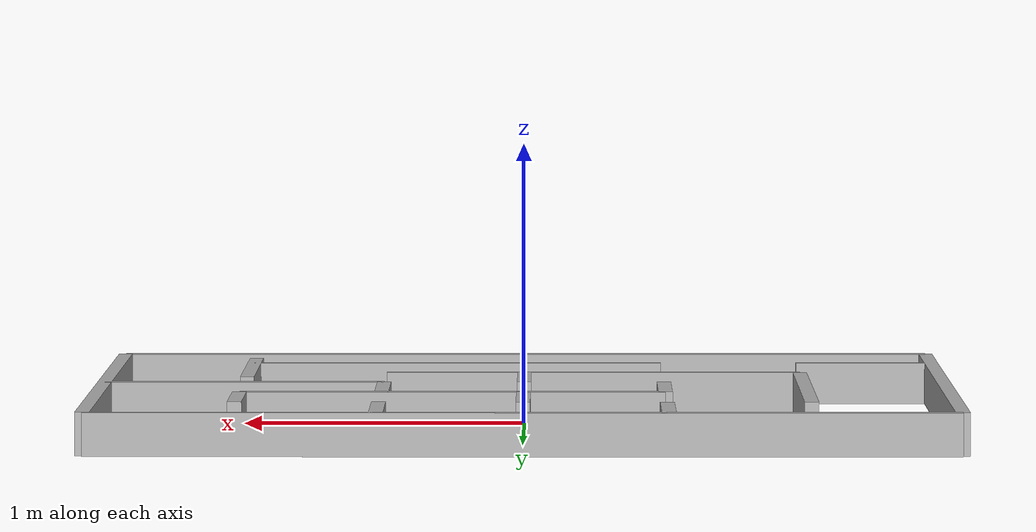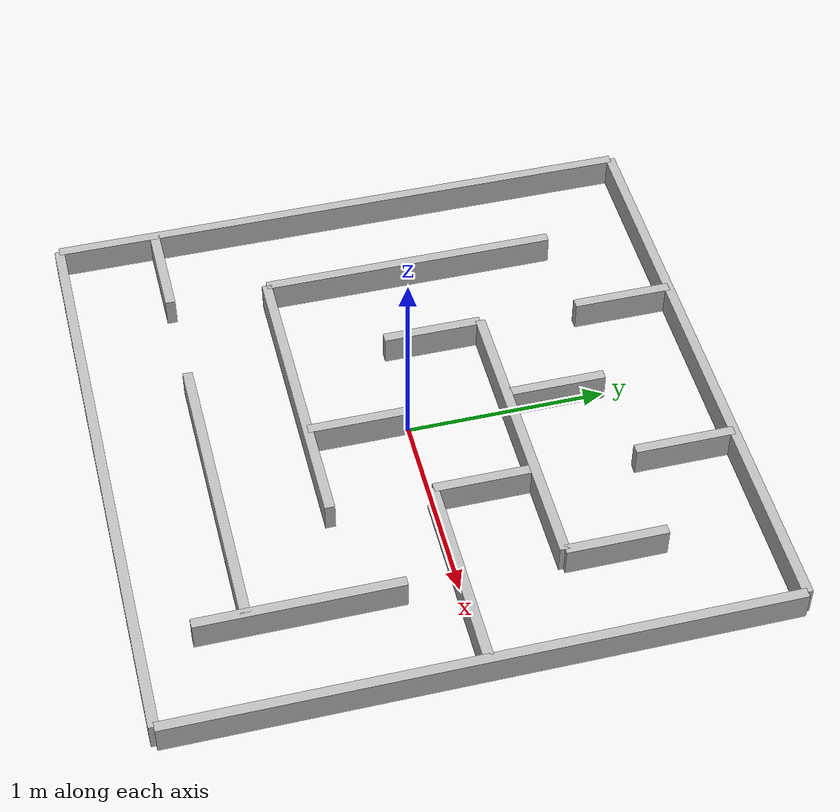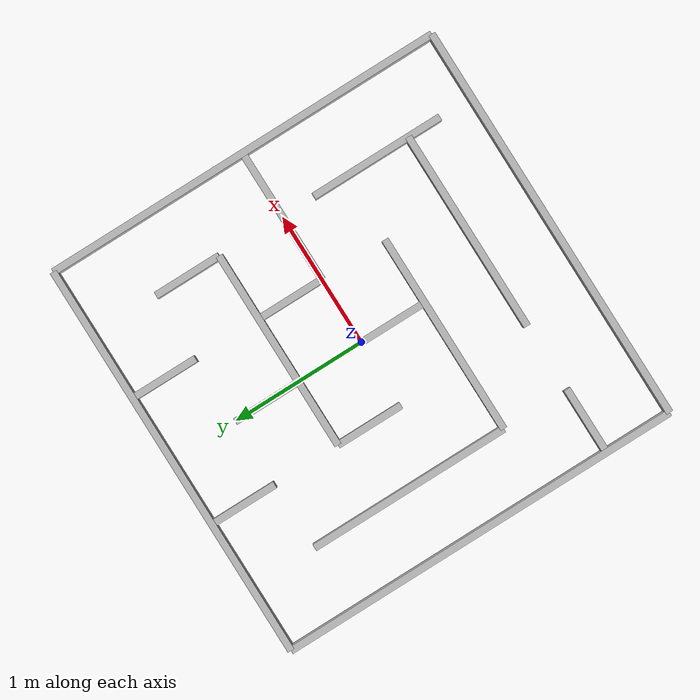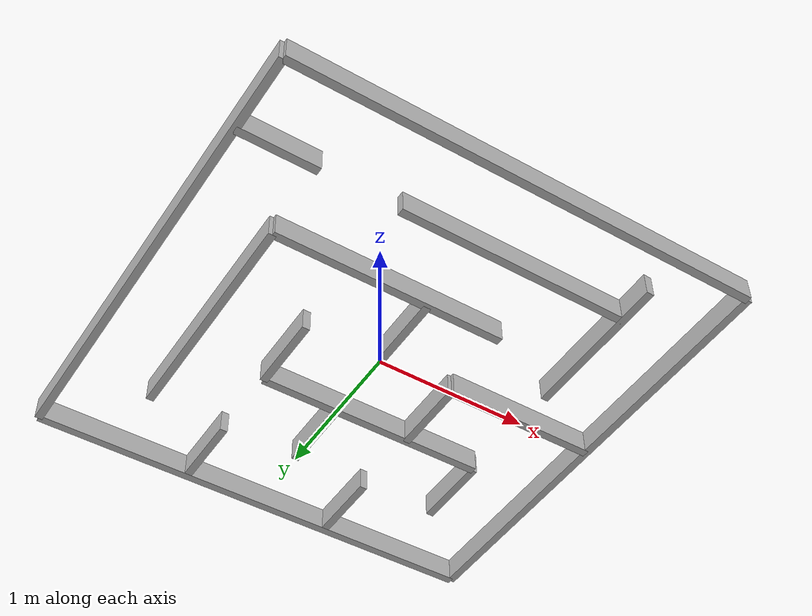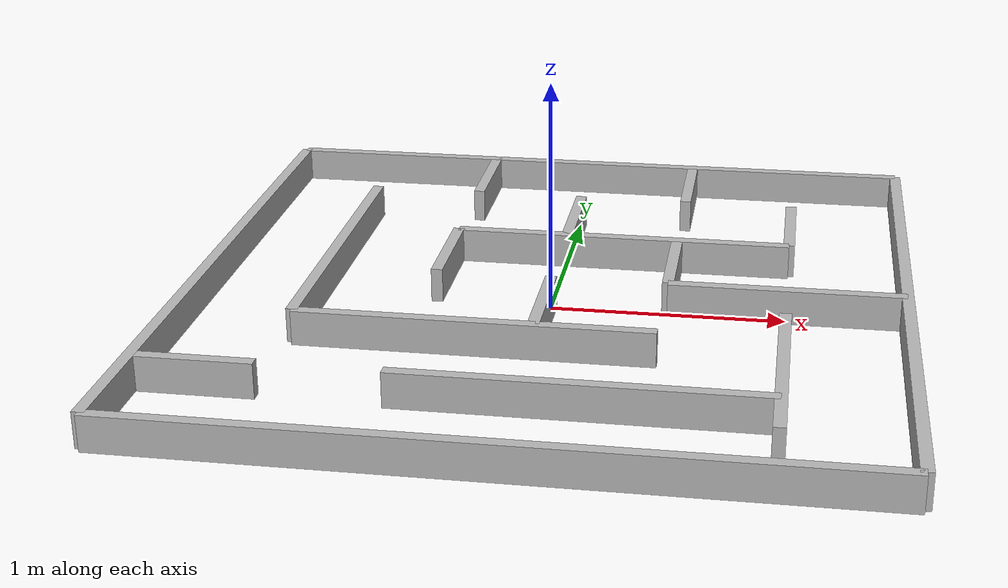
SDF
# sdf final code

<?xml version="1.0"?>
<sdf version="1.6">
  <model name="maze">
    <!-- Maze walls: 6x6 grid (0.5m cell size); wall thickness=0.05m; wall height=0.15m. Model is centered at origin (X=0,Y=0), with wall bases on the floor (Z=0). -->
    <static>true</static>
    <link name="maze_walls">
      <!-- Outer horizontal walls -->
      <collision name="wall_collision_h_outer_top">
        <geometry>
          <box>
            <size>3.0 0.05 0.15</size>
          </box>
        </geometry>
        <pose>0.0 1.5 0.075 0 0 0</pose>
      </collision>
      <visual name="wall_visual_h_outer_top">
        <geometry>
          <box>
            <size>3.0 0.05 0.15</size>
          </box>
        </geometry>
        <pose>0.0 1.5 0.075 0 0 0</pose>
      </visual>
      <collision name="wall_collision_h_outer_bottom">
        <geometry>
          <box>
            <size>3.0 0.05 0.15</size>
          </box>
        </geometry>
        <pose>0.0 -1.5 0.075 0 0 0</pose>
      </collision>
      <visual name="wall_visual_h_outer_bottom">
        <geometry>
          <box>
            <size>3.0 0.05 0.15</size>
          </box>
        </geometry>
        <pose>0.0 -1.5 0.075 0 0 0</pose>
      </visual>

      <!-- Outer vertical walls -->
      <collision name="wall_collision_v_outer_left">
        <geometry>
          <box>
            <size>0.05 3.0 0.15</size>
          </box>
        </geometry>
        <pose>-1.5 0.0 0.075 0 0 0</pose>
      </collision>
      <visual name="wall_visual_v_outer_left">
        <geometry>
          <box>
            <size>0.05 3.0 0.15</size>
          </box>
        </geometry>
        <pose>-1.5 0.0 0.075 0 0 0</pose>
      </visual>
      <collision name="wall_collision_v_outer_right">
        <geometry>
          <box>
            <size>0.05 3.0 0.15</size>
          </box>
        </geometry>
        <pose>1.5 0.0 0.075 0 0 0</pose>
      </collision>
      <visual name="wall_visual_v_outer_right">
        <geometry>
          <box>
            <size>0.05 3.0 0.15</size>
          </box>
        </geometry>
        <pose>1.5 0.0 0.075 0 0 0</pose>
      </visual>

      <!-- Internal horizontal walls -->
      <collision name="wall_collision_h_-1.00_-1.25">
        <geometry>
          <box>
            <size>0.5 0.05 0.15</size>
          </box>
        </geometry>
        <pose>-1.25 -1.0 0.075 0 0 0</pose>
      </collision>
      <visual name="wall_visual_h_-1.00_-1.25">
        <geometry>
          <box>
            <size>0.5 0.05 0.15</size>
          </box>
        </geometry>
        <pose>-1.25 -1.0 0.075 0 0 0</pose>
      </visual>
      <collision name="wall_collision_h_-1.00_0.25">
        <geometry>
          <box>
            <size>1.5 0.05 0.15</size>
          </box>
        </geometry>
        <pose>0.25 -1.0 0.075 0 0 0</pose>
      </collision>
      <visual name="wall_visual_h_-1.00_0.25">
        <geometry>
          <box>
            <size>1.5 0.05 0.15</size>
          </box>
        </geometry>
        <pose>0.25 -1.0 0.075 0 0 0</pose>
      </visual>
      <collision name="wall_collision_h_-0.50_-0.25">
        <geometry>
          <box>
            <size>1.5 0.05 0.15</size>
          </box>
        </geometry>
        <pose>-0.25 -0.5 0.075 0 0 0</pose>
      </collision>
      <visual name="wall_visual_h_-0.50_-0.25">
        <geometry>
          <box>
            <size>1.5 0.05 0.15</size>
          </box>
        </geometry>
        <pose>-0.25 -0.5 0.075 0 0 0</pose>
      </visual>
      <collision name="wall_collision_h_0.00_1.00">
        <geometry>
          <box>
            <size>1.0 0.05 0.15</size>
          </box>
        </geometry>
        <pose>1.0 0.0 0.075 0 0 0</pose>
      </collision>
      <visual name="wall_visual_h_0.00_1.00">
        <geometry>
          <box>
            <size>1.0 0.05 0.15</size>
          </box>
        </geometry>
        <pose>1.0 0.0 0.075 0 0 0</pose>
      </visual>
      <collision name="wall_collision_h_0.50_0.25">
        <geometry>
          <box>
            <size>1.5 0.05 0.15</size>
          </box>
        </geometry>
        <pose>0.25 0.5 0.075 0 0 0</pose>
      </collision>
      <visual name="wall_visual_h_0.50_0.25">
        <geometry>
          <box>
            <size>1.5 0.05 0.15</size>
          </box>
        </geometry>
        <pose>0.25 0.5 0.075 0 0 0</pose>
      </visual>

      <!-- Internal vertical walls -->
      <collision name="wall_collision_v_-1.00_0.25">
        <geometry>
          <box>
            <size>0.05 1.5 0.15</size>
          </box>
        </geometry>
        <pose>-1.0 0.25 0.075 0 0 0</pose>
      </collision>
      <visual name="wall_visual_v_-1.00_0.25">
        <geometry>
          <box>
            <size>0.05 1.5 0.15</size>
          </box>
        </geometry>
        <pose>-1.0 0.25 0.075 0 0 0</pose>
      </visual>
      <collision name="wall_collision_v_-0.50_0.25">
        <geometry>
          <box>
            <size>0.05 0.5 0.15</size>
          </box>
        </geometry>
        <pose>-0.5 0.25 0.075 0 0 0</pose>
      </collision>
      <visual name="wall_visual_v_-0.50_0.25">
        <geometry>
          <box>
            <size>0.05 0.5 0.15</size>
          </box>
        </geometry>
        <pose>-0.5 0.25 0.075 0 0 0</pose>
      </visual>
      <collision name="wall_collision_v_-0.50_1.25">
        <geometry>
          <box>
            <size>0.05 0.5 0.15</size>
          </box>
        </geometry>
        <pose>-0.5 1.25 0.075 0 0 0</pose>
      </collision>
      <visual name="wall_visual_v_-0.50_1.25">
        <geometry>
          <box>
            <size>0.05 0.5 0.15</size>
          </box>
        </geometry>
        <pose>-0.5 1.25 0.075 0 0 0</pose>
      </visual>
      <collision name="wall_collision_v_0.00_-0.25">
        <geometry>
          <box>
            <size>0.05 0.5 0.15</size>
          </box>
        </geometry>
        <pose>0.0 -0.25 0.075 0 0 0</pose>
      </collision>
      <visual name="wall_visual_v_0.00_-0.25">
        <geometry>
          <box>
            <size>0.05 0.5 0.15</size>
          </box>
        </geometry>
        <pose>0.0 -0.25 0.075 0 0 0</pose>
      </visual>
      <collision name="wall_collision_v_0.00_0.75">
        <geometry>
          <box>
            <size>0.05 0.5 0.15</size>
          </box>
        </geometry>
        <pose>0.0 0.75 0.075 0 0 0</pose>
      </collision>
      <visual name="wall_visual_v_0.00_0.75">
        <geometry>
          <box>
            <size>0.05 0.5 0.15</size>
          </box>
        </geometry>
        <pose>0.0 0.75 0.075 0 0 0</pose>
      </visual>
      <collision name="wall_collision_v_0.50_0.25">
        <geometry>
          <box>
            <size>0.05 0.5 0.15</size>
          </box>
        </geometry>
        <pose>0.5 0.25 0.075 0 0 0</pose>
      </collision>
      <visual name="wall_visual_v_0.50_0.25">
        <geometry>
          <box>
            <size>0.05 0.5 0.15</size>
          </box>
        </geometry>
        <pose>0.5 0.25 0.075 0 0 0</pose>
      </visual>
      <collision name="wall_collision_v_0.50_1.25">
        <geometry>
          <box>
            <size>0.05 0.5 0.15</size>
          </box>
        </geometry>
        <pose>0.5 1.25 0.075 0 0 0</pose>
      </collision>
      <visual name="wall_visual_v_0.50_1.25">
        <geometry>
          <box>
            <size>0.05 0.5 0.15</size>
          </box>
        </geometry>
        <pose>0.5 1.25 0.075 0 0 0</pose>
      </visual>
      <collision name="wall_collision_v_1.00_-0.75">
        <geometry>
          <box>
            <size>0.05 1.0 0.15</size>
          </box>
        </geometry>
        <pose>1.0 -0.75 0.075 0 0 0</pose>
      </collision>
      <visual name="wall_visual_v_1.00_-0.75">
        <geometry>
          <box>
            <size>0.05 1.0 0.15</size>
          </box>
        </geometry>
        <pose>1.0 -0.75 0.075 0 0 0</pose>
      </visual>
      <collision name="wall_collision_v_1.00_0.75">
        <geometry>
          <box>
            <size>0.05 0.5 0.15</size>
          </box>
        </geometry>
        <pose>1.0 0.75 0.075 0 0 0</pose>
      </collision>
      <visual name="wall_visual_v_1.00_0.75">
        <geometry>
          <box>
            <size>0.05 0.5 0.15</size>
          </box>
        </geometry>
        <pose>1.0 0.75 0.075 0 0 0</pose>
      </visual>
    </link>
  </model>
</sdf>
